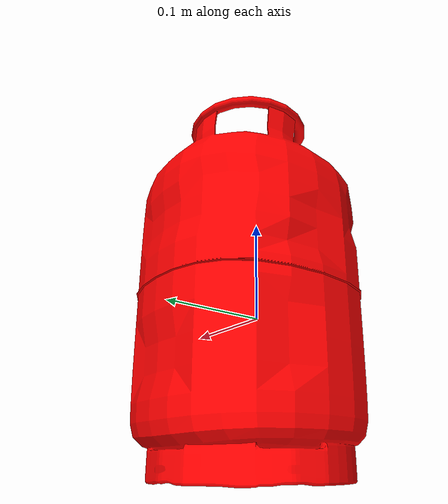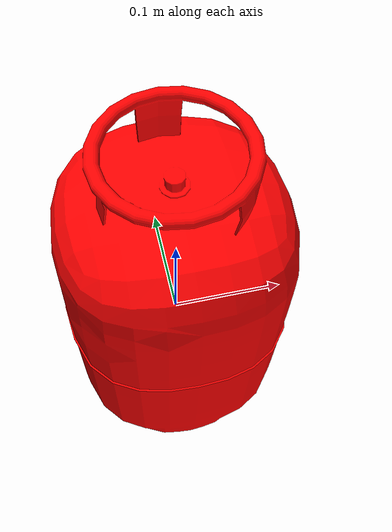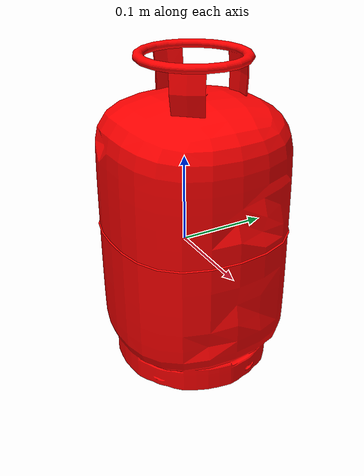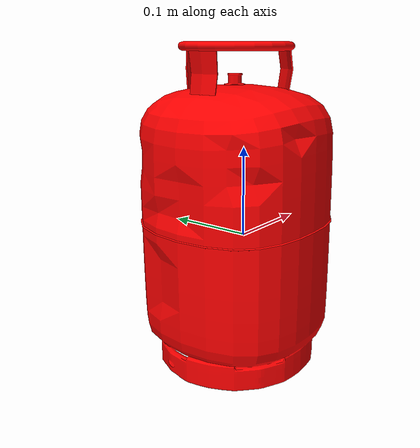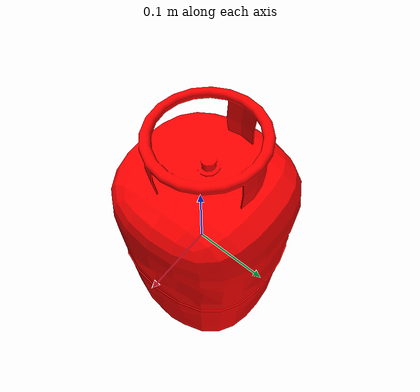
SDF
<?xml version='1.0'?>
<sdf version='1.4'>
  <model name="techtrix_cylinder">
  	<static>false</static>

  	<!-- We simply show the model, and for now we do not include any collisions -->
	<link name='cylinder_main'>
		<inertial>
			<pose>0 0 0 0 0 0</pose>
			<mass>10</mass>
			<inertia>
				<ixx>1</ixx>
				<ixy>0</ixy>
				<ixz>0</ixz>
				<iyy>1</iyy>
				<iyz>0</iyz>
				<izz>1</izz>
			</inertia>
    	</inertial>

		<collision name='collision'>
			<pose>0 0 0 0 0 0</pose>
			<geometry>
				<cylinder>
					<radius>0.108</radius>
					<length>0.3</length>
					<turns>0</turns>
				</cylinder>
			</geometry>
		</collision>

     <visual name='visual'>
		<pose>0 0 -0.15 0 0 0</pose>
		<geometry>
			<mesh>
			    <scale>0.3 0.3 0.3</scale>
				<uri>model://techtrix_cylinder/meshes/model.dae</uri>
			</mesh>
		</geometry>

			<!-- Red color -->
			<material>
				<ambient>0.3 0 0 0.3</ambient>
				<diffuse>1 0 0 1</diffuse>
				<specular>0.1 0.1 0.1 1</specular>
				<emissive>0.1 0 0 0.1</emissive>
			</material>

		</visual>
	</link>
  </model>
</sdf>
